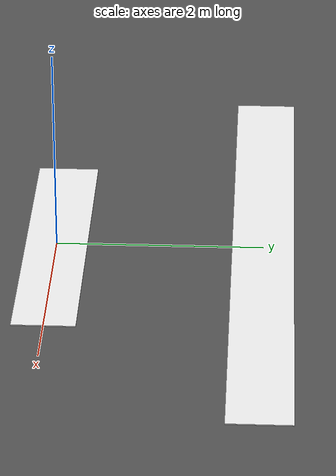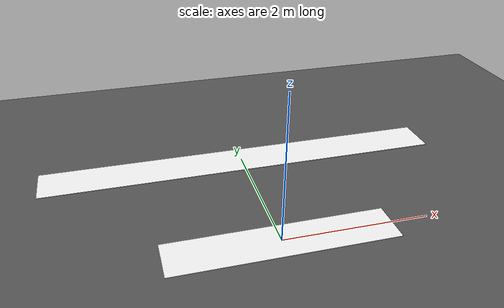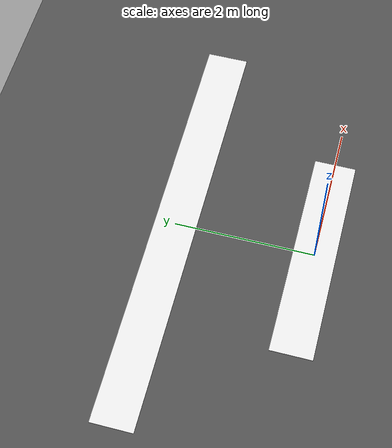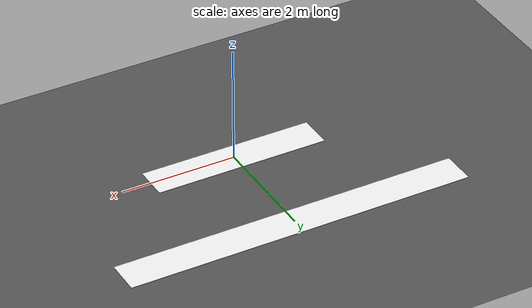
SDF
<?xml version="1.0" ?>
<sdf version="1.8">
  <world name="road_carpet_world">
    <physics name="1ms" type="ignored">
      <max_step_size>0.001</max_step_size>
      <real_time_factor>1.0</real_time_factor>
    </physics>

    <!-- Systems from empty.world -->
    <plugin filename="gz-sim-physics-system" name="gz::sim::systems::Physics"/>
    <plugin filename="gz-sim-user-commands-system" name="gz::sim::systems::UserCommands"/>
    <plugin filename="gz-sim-scene-broadcaster-system" name="gz::sim::systems::SceneBroadcaster"/>
    <plugin filename="gz-sim-sensors-system" name="gz::sim::systems::Sensors">
      <render_engine>ogre2</render_engine>
    </plugin>
    <plugin filename="gz-sim-imu-system" name="gz::sim::systems::Imu"/>

    <light type="directional" name="sun">
      <cast_shadows>true</cast_shadows>
      <pose>0 0 10 0 0 0</pose>
      <diffuse>0.8 0.8 0.8 1</diffuse>
      <specular>0.2 0.2 0.2 1</specular>
      <attenuation>
        <range>1000</range>
        <constant>0.9</constant>
        <linear>0.01</linear>
        <quadratic>0.001</quadratic>
      </attenuation>
      <direction>-0.5 0.1 -0.9</direction>
    </light>

    <!-- Ground plane below the road patch -->
    <model name="ground_plane">
      <static>true</static>
      <link name="link">
        <collision name="collision">
          <geometry>
            <plane>
              <normal>0 0 1</normal>
            </plane>
          </geometry>
        </collision>
        <visual name="visual">
          <geometry>
            <plane>
              <normal>0 0 1</normal>
              <size>100 100</size>
            </plane>
          </geometry>
          <material>
            <ambient>0.35 0.35 0.35 1</ambient>
            <diffuse>0.35 0.35 0.35 1</diffuse>
            <specular>0.05 0.05 0.05 1</specular>
          </material>
        </visual>
      </link>
    </model>

    <model name="road_straight_1">
      <static>true</static>
      <pose>0 0 0.001 0 0 0</pose>
      <link name="road_link">
        <collision name="road_collision">
          <geometry>
            <box>
              <size>3 0.6 0.01</size>
            </box>
          </geometry>
          <surface>
            <friction>
              <ode>
                <mu>1.2</mu>
                <mu2>1.2</mu2>
              </ode>
            </friction>
          </surface>
        </collision>

        <visual name="road_visual">
          <geometry>
            <box>
              <size>3 0.6 0.01</size>
            </box>
          </geometry>
          <material>
            <ambient>1 1 1 1</ambient>
            <diffuse>1 1 1 1</diffuse>
            <specular>0.05 0.05 0.05 1</specular>
            <pbr>
              <metal>
                <albedo_map>materials/road_straight_1.png</albedo_map>
                <roughness>0.9</roughness>
                <metalness>0.0</metalness>
              </metal>
            </pbr>
          </material>
        </visual>
      </link>
    </model>

    <model name="road_straight_2">
      <static>true</static>
      <pose>0 2 0.001 0 0 0</pose>
      <link name="road_link">
        <collision name="road_collision">
          <geometry>
            <box>
              <size>6 0.6 0.01</size>
            </box>
          </geometry>
          <surface>
            <friction>
              <ode>
                <mu>1.2</mu>
                <mu2>1.2</mu2>
              </ode>
            </friction>
          </surface>
        </collision>

        <visual name="road_visual">
          <geometry>
            <box>
              <size>6 0.6 0.01</size>
            </box>
          </geometry>
          <material>
            <ambient>1 1 1 1</ambient>
            <diffuse>1 1 1 1</diffuse>
            <specular>0.05 0.05 0.05 1</specular>
            <pbr>
              <metal>
                <albedo_map>materials/road_straight_2.png</albedo_map>
                <roughness>0.9</roughness>
                <metalness>0.0</metalness>
              </metal>
            </pbr>
          </material>
        </visual>
      </link>
    </model>

  </world>
</sdf>
